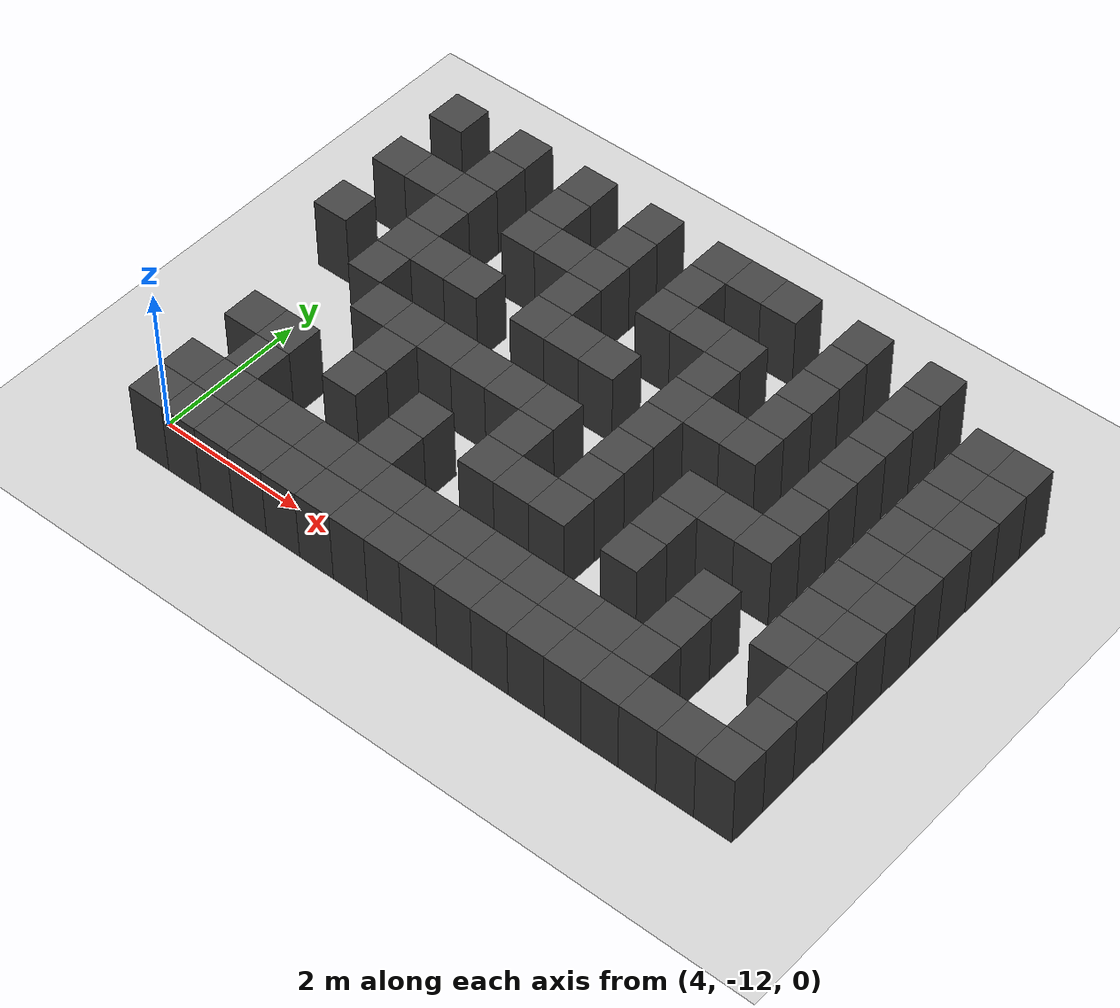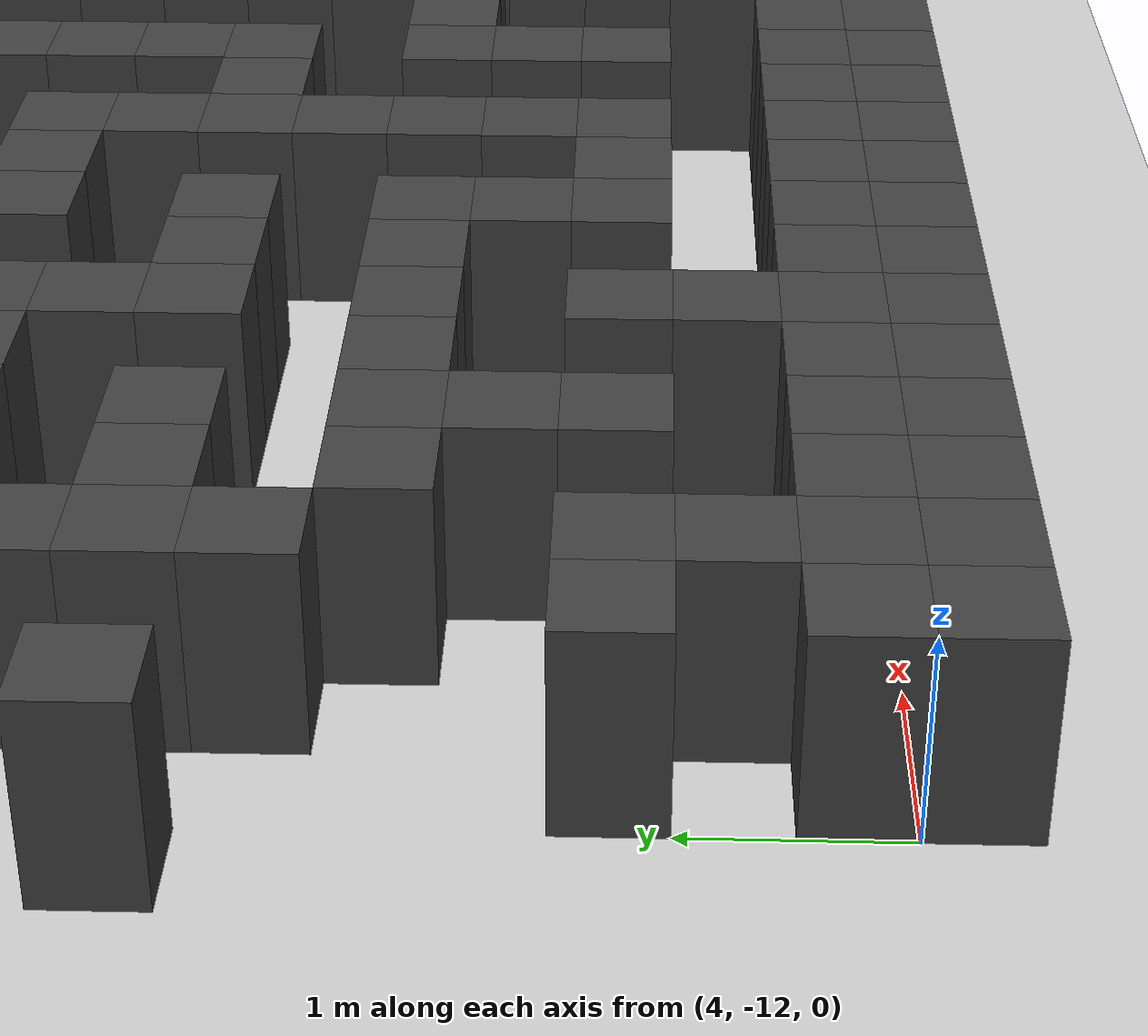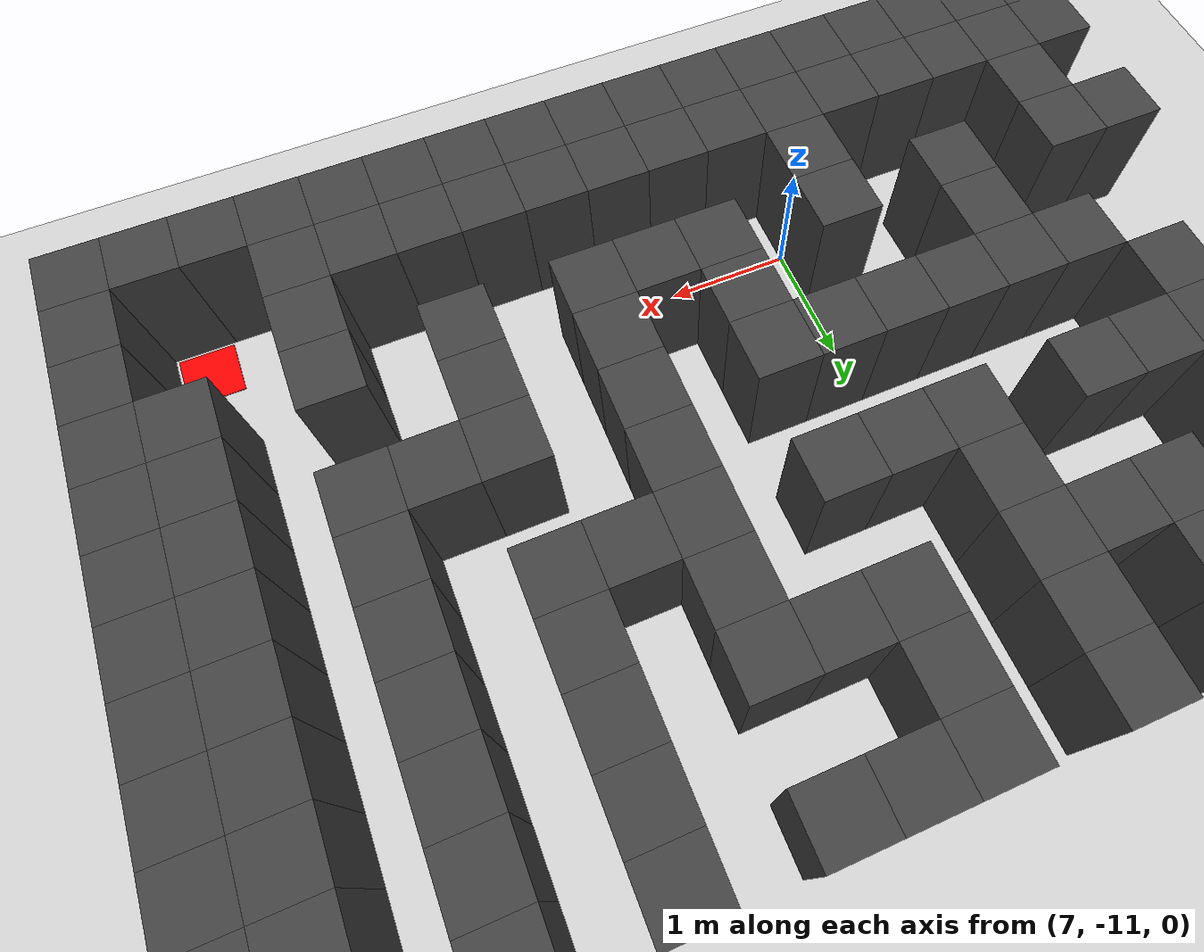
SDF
<sdf version="1.7">
 <world name="map_19815">
  <model name="ground_plane">
   <static>true</static>
   <link name="link">
    <collision name="collision">
     <geometry><plane><normal>0 0 1</normal><size>200 200</size></plane></geometry>
    </collision>
    <visual name="visual">
     <geometry><plane><normal>0 0 1</normal><size>200 200</size></plane></geometry>
     <material><ambient>0.8 0.8 0.8 1</ambient><diffuse>0.8 0.8 0.8 1</diffuse></material>
    </visual>
   </link>
  </model>
  <model name="maze_environment">
   <static>true</static>
   <link name="wall_1013">
    <pose>3.750 -6.750 0.500 0 0 0</pose>
    <collision name="col"><geometry><box><size>0.5 0.5 1.0</size></box></geometry></collision>
    <visual name="vis">
     <geometry><box><size>0.5 0.5 1.0</size></box></geometry>
     <material><ambient>0.15 0.15 0.15 1</ambient><diffuse>0.25 0.25 0.25 1</diffuse></material>
    </visual>
   </link>
   <link name="wall_1014">
    <pose>4.750 -6.750 0.500 0 0 0</pose>
    <collision name="col"><geometry><box><size>0.5 0.5 1.0</size></box></geometry></collision>
    <visual name="vis">
     <geometry><box><size>0.5 0.5 1.0</size></box></geometry>
     <material><ambient>0.15 0.15 0.15 1</ambient><diffuse>0.25 0.25 0.25 1</diffuse></material>
    </visual>
   </link>
   <link name="wall_1015">
    <pose>5.750 -6.750 0.500 0 0 0</pose>
    <collision name="col"><geometry><box><size>0.5 0.5 1.0</size></box></geometry></collision>
    <visual name="vis">
     <geometry><box><size>0.5 0.5 1.0</size></box></geometry>
     <material><ambient>0.15 0.15 0.15 1</ambient><diffuse>0.25 0.25 0.25 1</diffuse></material>
    </visual>
   </link>
   <link name="wall_1016">
    <pose>6.750 -6.750 0.500 0 0 0</pose>
    <collision name="col"><geometry><box><size>0.5 0.5 1.0</size></box></geometry></collision>
    <visual name="vis">
     <geometry><box><size>0.5 0.5 1.0</size></box></geometry>
     <material><ambient>0.15 0.15 0.15 1</ambient><diffuse>0.25 0.25 0.25 1</diffuse></material>
    </visual>
   </link>
   <link name="wall_1017">
    <pose>7.750 -6.750 0.500 0 0 0</pose>
    <collision name="col"><geometry><box><size>0.5 0.5 1.0</size></box></geometry></collision>
    <visual name="vis">
     <geometry><box><size>0.5 0.5 1.0</size></box></geometry>
     <material><ambient>0.15 0.15 0.15 1</ambient><diffuse>0.25 0.25 0.25 1</diffuse></material>
    </visual>
   </link>
   <link name="wall_1018">
    <pose>8.250 -6.750 0.500 0 0 0</pose>
    <collision name="col"><geometry><box><size>0.5 0.5 1.0</size></box></geometry></collision>
    <visual name="vis">
     <geometry><box><size>0.5 0.5 1.0</size></box></geometry>
     <material><ambient>0.15 0.15 0.15 1</ambient><diffuse>0.25 0.25 0.25 1</diffuse></material>
    </visual>
   </link>
   <link name="wall_1019">
    <pose>8.750 -6.750 0.500 0 0 0</pose>
    <collision name="col"><geometry><box><size>0.5 0.5 1.0</size></box></geometry></collision>
    <visual name="vis">
     <geometry><box><size>0.5 0.5 1.0</size></box></geometry>
     <material><ambient>0.15 0.15 0.15 1</ambient><diffuse>0.25 0.25 0.25 1</diffuse></material>
    </visual>
   </link>
   <link name="wall_1020">
    <pose>9.750 -6.750 0.500 0 0 0</pose>
    <collision name="col"><geometry><box><size>0.5 0.5 1.0</size></box></geometry></collision>
    <visual name="vis">
     <geometry><box><size>0.5 0.5 1.0</size></box></geometry>
     <material><ambient>0.15 0.15 0.15 1</ambient><diffuse>0.25 0.25 0.25 1</diffuse></material>
    </visual>
   </link>
   <link name="wall_1021">
    <pose>10.750 -6.750 0.500 0 0 0</pose>
    <collision name="col"><geometry><box><size>0.5 0.5 1.0</size></box></geometry></collision>
    <visual name="vis">
     <geometry><box><size>0.5 0.5 1.0</size></box></geometry>
     <material><ambient>0.15 0.15 0.15 1</ambient><diffuse>0.25 0.25 0.25 1</diffuse></material>
    </visual>
   </link>
   <link name="wall_1031">
    <pose>4.750 -7.250 0.500 0 0 0</pose>
    <collision name="col"><geometry><box><size>0.5 0.5 1.0</size></box></geometry></collision>
    <visual name="vis">
     <geometry><box><size>0.5 0.5 1.0</size></box></geometry>
     <material><ambient>0.15 0.15 0.15 1</ambient><diffuse>0.25 0.25 0.25 1</diffuse></material>
    </visual>
   </link>
   <link name="wall_1032">
    <pose>5.750 -7.250 0.500 0 0 0</pose>
    <collision name="col"><geometry><box><size>0.5 0.5 1.0</size></box></geometry></collision>
    <visual name="vis">
     <geometry><box><size>0.5 0.5 1.0</size></box></geometry>
     <material><ambient>0.15 0.15 0.15 1</ambient><diffuse>0.25 0.25 0.25 1</diffuse></material>
    </visual>
   </link>
   <link name="wall_1033">
    <pose>6.750 -7.250 0.500 0 0 0</pose>
    <collision name="col"><geometry><box><size>0.5 0.5 1.0</size></box></geometry></collision>
    <visual name="vis">
     <geometry><box><size>0.5 0.5 1.0</size></box></geometry>
     <material><ambient>0.15 0.15 0.15 1</ambient><diffuse>0.25 0.25 0.25 1</diffuse></material>
    </visual>
   </link>
   <link name="wall_1034">
    <pose>7.750 -7.250 0.500 0 0 0</pose>
    <collision name="col"><geometry><box><size>0.5 0.5 1.0</size></box></geometry></collision>
    <visual name="vis">
     <geometry><box><size>0.5 0.5 1.0</size></box></geometry>
     <material><ambient>0.15 0.15 0.15 1</ambient><diffuse>0.25 0.25 0.25 1</diffuse></material>
    </visual>
   </link>
   <link name="wall_1035">
    <pose>9.750 -7.250 0.500 0 0 0</pose>
    <collision name="col"><geometry><box><size>0.5 0.5 1.0</size></box></geometry></collision>
    <visual name="vis">
     <geometry><box><size>0.5 0.5 1.0</size></box></geometry>
     <material><ambient>0.15 0.15 0.15 1</ambient><diffuse>0.25 0.25 0.25 1</diffuse></material>
    </visual>
   </link>
   <link name="wall_1036">
    <pose>10.750 -7.250 0.500 0 0 0</pose>
    <collision name="col"><geometry><box><size>0.5 0.5 1.0</size></box></geometry></collision>
    <visual name="vis">
     <geometry><box><size>0.5 0.5 1.0</size></box></geometry>
     <material><ambient>0.15 0.15 0.15 1</ambient><diffuse>0.25 0.25 0.25 1</diffuse></material>
    </visual>
   </link>
   <link name="wall_1037">
    <pose>11.750 -7.250 0.500 0 0 0</pose>
    <collision name="col"><geometry><box><size>0.5 0.5 1.0</size></box></geometry></collision>
    <visual name="vis">
     <geometry><box><size>0.5 0.5 1.0</size></box></geometry>
     <material><ambient>0.15 0.15 0.15 1</ambient><diffuse>0.25 0.25 0.25 1</diffuse></material>
    </visual>
   </link>
   <link name="wall_1038">
    <pose>12.250 -7.250 0.500 0 0 0</pose>
    <collision name="col"><geometry><box><size>0.5 0.5 1.0</size></box></geometry></collision>
    <visual name="vis">
     <geometry><box><size>0.5 0.5 1.0</size></box></geometry>
     <material><ambient>0.15 0.15 0.15 1</ambient><diffuse>0.25 0.25 0.25 1</diffuse></material>
    </visual>
   </link>
   <link name="wall_1063">
    <pose>3.750 -7.750 0.500 0 0 0</pose>
    <collision name="col"><geometry><box><size>0.5 0.5 1.0</size></box></geometry></collision>
    <visual name="vis">
     <geometry><box><size>0.5 0.5 1.0</size></box></geometry>
     <material><ambient>0.15 0.15 0.15 1</ambient><diffuse>0.25 0.25 0.25 1</diffuse></material>
    </visual>
   </link>
   <link name="wall_1064">
    <pose>4.250 -7.750 0.500 0 0 0</pose>
    <collision name="col"><geometry><box><size>0.5 0.5 1.0</size></box></geometry></collision>
    <visual name="vis">
     <geometry><box><size>0.5 0.5 1.0</size></box></geometry>
     <material><ambient>0.15 0.15 0.15 1</ambient><diffuse>0.25 0.25 0.25 1</diffuse></material>
    </visual>
   </link>
   <link name="wall_1065">
    <pose>4.750 -7.750 0.500 0 0 0</pose>
    <collision name="col"><geometry><box><size>0.5 0.5 1.0</size></box></geometry></collision>
    <visual name="vis">
     <geometry><box><size>0.5 0.5 1.0</size></box></geometry>
     <material><ambient>0.15 0.15 0.15 1</ambient><diffuse>0.25 0.25 0.25 1</diffuse></material>
    </visual>
   </link>
   <link name="wall_1066">
    <pose>5.750 -7.750 0.500 0 0 0</pose>
    <collision name="col"><geometry><box><size>0.5 0.5 1.0</size></box></geometry></collision>
    <visual name="vis">
     <geometry><box><size>0.5 0.5 1.0</size></box></geometry>
     <material><ambient>0.15 0.15 0.15 1</ambient><diffuse>0.25 0.25 0.25 1</diffuse></material>
    </visual>
   </link>
   <link name="wall_1067">
    <pose>6.250 -7.750 0.500 0 0 0</pose>
    <collision name="col"><geometry><box><size>0.5 0.5 1.0</size></box></geometry></collision>
    <visual name="vis">
     <geometry><box><size>0.5 0.5 1.0</size></box></geometry>
     <material><ambient>0.15 0.15 0.15 1</ambient><diffuse>0.25 0.25 0.25 1</diffuse></material>
    </visual>
   </link>
   <link name="wall_1068">
    <pose>6.750 -7.750 0.500 0 0 0</pose>
    <collision name="col"><geometry><box><size>0.5 0.5 1.0</size></box></geometry></collision>
    <visual name="vis">
     <geometry><box><size>0.5 0.5 1.0</size></box></geometry>
     <material><ambient>0.15 0.15 0.15 1</ambient><diffuse>0.25 0.25 0.25 1</diffuse></material>
    </visual>
   </link>
   <link name="wall_1069">
    <pose>7.750 -7.750 0.500 0 0 0</pose>
    <collision name="col"><geometry><box><size>0.5 0.5 1.0</size></box></geometry></collision>
    <visual name="vis">
     <geometry><box><size>0.5 0.5 1.0</size></box></geometry>
     <material><ambient>0.15 0.15 0.15 1</ambient><diffuse>0.25 0.25 0.25 1</diffuse></material>
    </visual>
   </link>
   <link name="wall_1070">
    <pose>8.250 -7.750 0.500 0 0 0</pose>
    <collision name="col"><geometry><box><size>0.5 0.5 1.0</size></box></geometry></collision>
    <visual name="vis">
     <geometry><box><size>0.5 0.5 1.0</size></box></geometry>
     <material><ambient>0.15 0.15 0.15 1</ambient><diffuse>0.25 0.25 0.25 1</diffuse></material>
    </visual>
   </link>
   <link name="wall_1071">
    <pose>8.750 -7.750 0.500 0 0 0</pose>
    <collision name="col"><geometry><box><size>0.5 0.5 1.0</size></box></geometry></collision>
    <visual name="vis">
     <geometry><box><size>0.5 0.5 1.0</size></box></geometry>
     <material><ambient>0.15 0.15 0.15 1</ambient><diffuse>0.25 0.25 0.25 1</diffuse></material>
    </visual>
   </link>
   <link name="wall_1072">
    <pose>9.750 -7.750 0.500 0 0 0</pose>
    <collision name="col"><geometry><box><size>0.5 0.5 1.0</size></box></geometry></collision>
    <visual name="vis">
     <geometry><box><size>0.5 0.5 1.0</size></box></geometry>
     <material><ambient>0.15 0.15 0.15 1</ambient><diffuse>0.25 0.25 0.25 1</diffuse></material>
    </visual>
   </link>
   <link name="wall_1073">
    <pose>10.750 -7.750 0.500 0 0 0</pose>
    <collision name="col"><geometry><box><size>0.5 0.5 1.0</size></box></geometry></collision>
    <visual name="vis">
     <geometry><box><size>0.5 0.5 1.0</size></box></geometry>
     <material><ambient>0.15 0.15 0.15 1</ambient><diffuse>0.25 0.25 0.25 1</diffuse></material>
    </visual>
   </link>
   <link name="wall_1074">
    <pose>11.750 -7.750 0.500 0 0 0</pose>
    <collision name="col"><geometry><box><size>0.5 0.5 1.0</size></box></geometry></collision>
    <visual name="vis">
     <geometry><box><size>0.5 0.5 1.0</size></box></geometry>
     <material><ambient>0.15 0.15 0.15 1</ambient><diffuse>0.25 0.25 0.25 1</diffuse></material>
    </visual>
   </link>
   <link name="wall_1075">
    <pose>12.250 -7.750 0.500 0 0 0</pose>
    <collision name="col"><geometry><box><size>0.5 0.5 1.0</size></box></geometry></collision>
    <visual name="vis">
     <geometry><box><size>0.5 0.5 1.0</size></box></geometry>
     <material><ambient>0.15 0.15 0.15 1</ambient><diffuse>0.25 0.25 0.25 1</diffuse></material>
    </visual>
   </link>
   <link name="wall_1085">
    <pose>4.750 -8.250 0.500 0 0 0</pose>
    <collision name="col"><geometry><box><size>0.5 0.5 1.0</size></box></geometry></collision>
    <visual name="vis">
     <geometry><box><size>0.5 0.5 1.0</size></box></geometry>
     <material><ambient>0.15 0.15 0.15 1</ambient><diffuse>0.25 0.25 0.25 1</diffuse></material>
    </visual>
   </link>
   <link name="wall_1086">
    <pose>6.750 -8.250 0.500 0 0 0</pose>
    <collision name="col"><geometry><box><size>0.5 0.5 1.0</size></box></geometry></collision>
    <visual name="vis">
     <geometry><box><size>0.5 0.5 1.0</size></box></geometry>
     <material><ambient>0.15 0.15 0.15 1</ambient><diffuse>0.25 0.25 0.25 1</diffuse></material>
    </visual>
   </link>
   <link name="wall_1087">
    <pose>8.750 -8.250 0.500 0 0 0</pose>
    <collision name="col"><geometry><box><size>0.5 0.5 1.0</size></box></geometry></collision>
    <visual name="vis">
     <geometry><box><size>0.5 0.5 1.0</size></box></geometry>
     <material><ambient>0.15 0.15 0.15 1</ambient><diffuse>0.25 0.25 0.25 1</diffuse></material>
    </visual>
   </link>
   <link name="wall_1088">
    <pose>9.750 -8.250 0.500 0 0 0</pose>
    <collision name="col"><geometry><box><size>0.5 0.5 1.0</size></box></geometry></collision>
    <visual name="vis">
     <geometry><box><size>0.5 0.5 1.0</size></box></geometry>
     <material><ambient>0.15 0.15 0.15 1</ambient><diffuse>0.25 0.25 0.25 1</diffuse></material>
    </visual>
   </link>
   <link name="wall_1089">
    <pose>10.750 -8.250 0.500 0 0 0</pose>
    <collision name="col"><geometry><box><size>0.5 0.5 1.0</size></box></geometry></collision>
    <visual name="vis">
     <geometry><box><size>0.5 0.5 1.0</size></box></geometry>
     <material><ambient>0.15 0.15 0.15 1</ambient><diffuse>0.25 0.25 0.25 1</diffuse></material>
    </visual>
   </link>
   <link name="wall_1090">
    <pose>11.750 -8.250 0.500 0 0 0</pose>
    <collision name="col"><geometry><box><size>0.5 0.5 1.0</size></box></geometry></collision>
    <visual name="vis">
     <geometry><box><size>0.5 0.5 1.0</size></box></geometry>
     <material><ambient>0.15 0.15 0.15 1</ambient><diffuse>0.25 0.25 0.25 1</diffuse></material>
    </visual>
   </link>
   <link name="wall_1091">
    <pose>12.250 -8.250 0.500 0 0 0</pose>
    <collision name="col"><geometry><box><size>0.5 0.5 1.0</size></box></geometry></collision>
    <visual name="vis">
     <geometry><box><size>0.5 0.5 1.0</size></box></geometry>
     <material><ambient>0.15 0.15 0.15 1</ambient><diffuse>0.25 0.25 0.25 1</diffuse></material>
    </visual>
   </link>
   <link name="wall_1113">
    <pose>3.750 -8.750 0.500 0 0 0</pose>
    <collision name="col"><geometry><box><size>0.5 0.5 1.0</size></box></geometry></collision>
    <visual name="vis">
     <geometry><box><size>0.5 0.5 1.0</size></box></geometry>
     <material><ambient>0.15 0.15 0.15 1</ambient><diffuse>0.25 0.25 0.25 1</diffuse></material>
    </visual>
   </link>
   <link name="wall_1114">
    <pose>4.750 -8.750 0.500 0 0 0</pose>
    <collision name="col"><geometry><box><size>0.5 0.5 1.0</size></box></geometry></collision>
    <visual name="vis">
     <geometry><box><size>0.5 0.5 1.0</size></box></geometry>
     <material><ambient>0.15 0.15 0.15 1</ambient><diffuse>0.25 0.25 0.25 1</diffuse></material>
    </visual>
   </link>
   <link name="wall_1115">
    <pose>5.250 -8.750 0.500 0 0 0</pose>
    <collision name="col"><geometry><box><size>0.5 0.5 1.0</size></box></geometry></collision>
    <visual name="vis">
     <geometry><box><size>0.5 0.5 1.0</size></box></geometry>
     <material><ambient>0.15 0.15 0.15 1</ambient><diffuse>0.25 0.25 0.25 1</diffuse></material>
    </visual>
   </link>
   <link name="wall_1116">
    <pose>5.750 -8.750 0.500 0 0 0</pose>
    <collision name="col"><geometry><box><size>0.5 0.5 1.0</size></box></geometry></collision>
    <visual name="vis">
     <geometry><box><size>0.5 0.5 1.0</size></box></geometry>
     <material><ambient>0.15 0.15 0.15 1</ambient><diffuse>0.25 0.25 0.25 1</diffuse></material>
    </visual>
   </link>
   <link name="wall_1117">
    <pose>6.750 -8.750 0.500 0 0 0</pose>
    <collision name="col"><geometry><box><size>0.5 0.5 1.0</size></box></geometry></collision>
    <visual name="vis">
     <geometry><box><size>0.5 0.5 1.0</size></box></geometry>
     <material><ambient>0.15 0.15 0.15 1</ambient><diffuse>0.25 0.25 0.25 1</diffuse></material>
    </visual>
   </link>
   <link name="wall_1118">
    <pose>7.250 -8.750 0.500 0 0 0</pose>
    <collision name="col"><geometry><box><size>0.5 0.5 1.0</size></box></geometry></collision>
    <visual name="vis">
     <geometry><box><size>0.5 0.5 1.0</size></box></geometry>
     <material><ambient>0.15 0.15 0.15 1</ambient><diffuse>0.25 0.25 0.25 1</diffuse></material>
    </visual>
   </link>
   <link name="wall_1119">
    <pose>7.750 -8.750 0.500 0 0 0</pose>
    <collision name="col"><geometry><box><size>0.5 0.5 1.0</size></box></geometry></collision>
    <visual name="vis">
     <geometry><box><size>0.5 0.5 1.0</size></box></geometry>
     <material><ambient>0.15 0.15 0.15 1</ambient><diffuse>0.25 0.25 0.25 1</diffuse></material>
    </visual>
   </link>
   <link name="wall_1120">
    <pose>8.750 -8.750 0.500 0 0 0</pose>
    <collision name="col"><geometry><box><size>0.5 0.5 1.0</size></box></geometry></collision>
    <visual name="vis">
     <geometry><box><size>0.5 0.5 1.0</size></box></geometry>
     <material><ambient>0.15 0.15 0.15 1</ambient><diffuse>0.25 0.25 0.25 1</diffuse></material>
    </visual>
   </link>
   <link name="wall_1121">
    <pose>9.250 -8.750 0.500 0 0 0</pose>
    <collision name="col"><geometry><box><size>0.5 0.5 1.0</size></box></geometry></collision>
    <visual name="vis">
     <geometry><box><size>0.5 0.5 1.0</size></box></geometry>
     <material><ambient>0.15 0.15 0.15 1</ambient><diffuse>0.25 0.25 0.25 1</diffuse></material>
    </visual>
   </link>
   <link name="wall_1122">
    <pose>9.750 -8.750 0.500 0 0 0</pose>
    <collision name="col"><geometry><box><size>0.5 0.5 1.0</size></box></geometry></collision>
    <visual name="vis">
     <geometry><box><size>0.5 0.5 1.0</size></box></geometry>
     <material><ambient>0.15 0.15 0.15 1</ambient><diffuse>0.25 0.25 0.25 1</diffuse></material>
    </visual>
   </link>
   <link name="wall_1123">
    <pose>10.750 -8.750 0.500 0 0 0</pose>
    <collision name="col"><geometry><box><size>0.5 0.5 1.0</size></box></geometry></collision>
    <visual name="vis">
     <geometry><box><size>0.5 0.5 1.0</size></box></geometry>
     <material><ambient>0.15 0.15 0.15 1</ambient><diffuse>0.25 0.25 0.25 1</diffuse></material>
    </visual>
   </link>
   <link name="wall_1124">
    <pose>11.750 -8.750 0.500 0 0 0</pose>
    <collision name="col"><geometry><box><size>0.5 0.5 1.0</size></box></geometry></collision>
    <visual name="vis">
     <geometry><box><size>0.5 0.5 1.0</size></box></geometry>
     <material><ambient>0.15 0.15 0.15 1</ambient><diffuse>0.25 0.25 0.25 1</diffuse></material>
    </visual>
   </link>
   <link name="wall_1125">
    <pose>12.250 -8.750 0.500 0 0 0</pose>
    <collision name="col"><geometry><box><size>0.5 0.5 1.0</size></box></geometry></collision>
    <visual name="vis">
     <geometry><box><size>0.5 0.5 1.0</size></box></geometry>
     <material><ambient>0.15 0.15 0.15 1</ambient><diffuse>0.25 0.25 0.25 1</diffuse></material>
    </visual>
   </link>
   <link name="wall_1136">
    <pose>4.750 -9.250 0.500 0 0 0</pose>
    <collision name="col"><geometry><box><size>0.5 0.5 1.0</size></box></geometry></collision>
    <visual name="vis">
     <geometry><box><size>0.5 0.5 1.0</size></box></geometry>
     <material><ambient>0.15 0.15 0.15 1</ambient><diffuse>0.25 0.25 0.25 1</diffuse></material>
    </visual>
   </link>
   <link name="wall_1137">
    <pose>8.750 -9.250 0.500 0 0 0</pose>
    <collision name="col"><geometry><box><size>0.5 0.5 1.0</size></box></geometry></collision>
    <visual name="vis">
     <geometry><box><size>0.5 0.5 1.0</size></box></geometry>
     <material><ambient>0.15 0.15 0.15 1</ambient><diffuse>0.25 0.25 0.25 1</diffuse></material>
    </visual>
   </link>
   <link name="wall_1138">
    <pose>10.750 -9.250 0.500 0 0 0</pose>
    <collision name="col"><geometry><box><size>0.5 0.5 1.0</size></box></geometry></collision>
    <visual name="vis">
     <geometry><box><size>0.5 0.5 1.0</size></box></geometry>
     <material><ambient>0.15 0.15 0.15 1</ambient><diffuse>0.25 0.25 0.25 1</diffuse></material>
    </visual>
   </link>
   <link name="wall_1139">
    <pose>11.750 -9.250 0.500 0 0 0</pose>
    <collision name="col"><geometry><box><size>0.5 0.5 1.0</size></box></geometry></collision>
    <visual name="vis">
     <geometry><box><size>0.5 0.5 1.0</size></box></geometry>
     <material><ambient>0.15 0.15 0.15 1</ambient><diffuse>0.25 0.25 0.25 1</diffuse></material>
    </visual>
   </link>
   <link name="wall_1140">
    <pose>12.250 -9.250 0.500 0 0 0</pose>
    <collision name="col"><geometry><box><size>0.5 0.5 1.0</size></box></geometry></collision>
    <visual name="vis">
     <geometry><box><size>0.5 0.5 1.0</size></box></geometry>
     <material><ambient>0.15 0.15 0.15 1</ambient><diffuse>0.25 0.25 0.25 1</diffuse></material>
    </visual>
   </link>
   <link name="wall_1165">
    <pose>5.250 -9.750 0.500 0 0 0</pose>
    <collision name="col"><geometry><box><size>0.5 0.5 1.0</size></box></geometry></collision>
    <visual name="vis">
     <geometry><box><size>0.5 0.5 1.0</size></box></geometry>
     <material><ambient>0.15 0.15 0.15 1</ambient><diffuse>0.25 0.25 0.25 1</diffuse></material>
    </visual>
   </link>
   <link name="wall_1166">
    <pose>5.750 -9.750 0.500 0 0 0</pose>
    <collision name="col"><geometry><box><size>0.5 0.5 1.0</size></box></geometry></collision>
    <visual name="vis">
     <geometry><box><size>0.5 0.5 1.0</size></box></geometry>
     <material><ambient>0.15 0.15 0.15 1</ambient><diffuse>0.25 0.25 0.25 1</diffuse></material>
    </visual>
   </link>
   <link name="wall_1167">
    <pose>6.250 -9.750 0.500 0 0 0</pose>
    <collision name="col"><geometry><box><size>0.5 0.5 1.0</size></box></geometry></collision>
    <visual name="vis">
     <geometry><box><size>0.5 0.5 1.0</size></box></geometry>
     <material><ambient>0.15 0.15 0.15 1</ambient><diffuse>0.25 0.25 0.25 1</diffuse></material>
    </visual>
   </link>
   <link name="wall_1168">
    <pose>6.750 -9.750 0.500 0 0 0</pose>
    <collision name="col"><geometry><box><size>0.5 0.5 1.0</size></box></geometry></collision>
    <visual name="vis">
     <geometry><box><size>0.5 0.5 1.0</size></box></geometry>
     <material><ambient>0.15 0.15 0.15 1</ambient><diffuse>0.25 0.25 0.25 1</diffuse></material>
    </visual>
   </link>
   <link name="wall_1169">
    <pose>7.250 -9.750 0.500 0 0 0</pose>
    <collision name="col"><geometry><box><size>0.5 0.5 1.0</size></box></geometry></collision>
    <visual name="vis">
     <geometry><box><size>0.5 0.5 1.0</size></box></geometry>
     <material><ambient>0.15 0.15 0.15 1</ambient><diffuse>0.25 0.25 0.25 1</diffuse></material>
    </visual>
   </link>
   <link name="wall_1170">
    <pose>7.750 -9.750 0.500 0 0 0</pose>
    <collision name="col"><geometry><box><size>0.5 0.5 1.0</size></box></geometry></collision>
    <visual name="vis">
     <geometry><box><size>0.5 0.5 1.0</size></box></geometry>
     <material><ambient>0.15 0.15 0.15 1</ambient><diffuse>0.25 0.25 0.25 1</diffuse></material>
    </visual>
   </link>
   <link name="wall_1171">
    <pose>8.750 -9.750 0.500 0 0 0</pose>
    <collision name="col"><geometry><box><size>0.5 0.5 1.0</size></box></geometry></collision>
    <visual name="vis">
     <geometry><box><size>0.5 0.5 1.0</size></box></geometry>
     <material><ambient>0.15 0.15 0.15 1</ambient><diffuse>0.25 0.25 0.25 1</diffuse></material>
    </visual>
   </link>
   <link name="wall_1172">
    <pose>9.750 -9.750 0.500 0 0 0</pose>
    <collision name="col"><geometry><box><size>0.5 0.5 1.0</size></box></geometry></collision>
    <visual name="vis">
     <geometry><box><size>0.5 0.5 1.0</size></box></geometry>
     <material><ambient>0.15 0.15 0.15 1</ambient><diffuse>0.25 0.25 0.25 1</diffuse></material>
    </visual>
   </link>
   <link name="wall_1173">
    <pose>10.250 -9.750 0.500 0 0 0</pose>
    <collision name="col"><geometry><box><size>0.5 0.5 1.0</size></box></geometry></collision>
    <visual name="vis">
     <geometry><box><size>0.5 0.5 1.0</size></box></geometry>
     <material><ambient>0.15 0.15 0.15 1</ambient><diffuse>0.25 0.25 0.25 1</diffuse></material>
    </visual>
   </link>
   <link name="wall_1174">
    <pose>10.750 -9.750 0.500 0 0 0</pose>
    <collision name="col"><geometry><box><size>0.5 0.5 1.0</size></box></geometry></collision>
    <visual name="vis">
     <geometry><box><size>0.5 0.5 1.0</size></box></geometry>
     <material><ambient>0.15 0.15 0.15 1</ambient><diffuse>0.25 0.25 0.25 1</diffuse></material>
    </visual>
   </link>
   <link name="wall_1175">
    <pose>11.750 -9.750 0.500 0 0 0</pose>
    <collision name="col"><geometry><box><size>0.5 0.5 1.0</size></box></geometry></collision>
    <visual name="vis">
     <geometry><box><size>0.5 0.5 1.0</size></box></geometry>
     <material><ambient>0.15 0.15 0.15 1</ambient><diffuse>0.25 0.25 0.25 1</diffuse></material>
    </visual>
   </link>
   <link name="wall_1176">
    <pose>12.250 -9.750 0.500 0 0 0</pose>
    <collision name="col"><geometry><box><size>0.5 0.5 1.0</size></box></geometry></collision>
    <visual name="vis">
     <geometry><box><size>0.5 0.5 1.0</size></box></geometry>
     <material><ambient>0.15 0.15 0.15 1</ambient><diffuse>0.25 0.25 0.25 1</diffuse></material>
    </visual>
   </link>
   <link name="wall_1188">
    <pose>5.750 -10.250 0.500 0 0 0</pose>
    <collision name="col"><geometry><box><size>0.5 0.5 1.0</size></box></geometry></collision>
    <visual name="vis">
     <geometry><box><size>0.5 0.5 1.0</size></box></geometry>
     <material><ambient>0.15 0.15 0.15 1</ambient><diffuse>0.25 0.25 0.25 1</diffuse></material>
    </visual>
   </link>
   <link name="wall_1189">
    <pose>7.750 -10.250 0.500 0 0 0</pose>
    <collision name="col"><geometry><box><size>0.5 0.5 1.0</size></box></geometry></collision>
    <visual name="vis">
     <geometry><box><size>0.5 0.5 1.0</size></box></geometry>
     <material><ambient>0.15 0.15 0.15 1</ambient><diffuse>0.25 0.25 0.25 1</diffuse></material>
    </visual>
   </link>
   <link name="wall_1190">
    <pose>8.750 -10.250 0.500 0 0 0</pose>
    <collision name="col"><geometry><box><size>0.5 0.5 1.0</size></box></geometry></collision>
    <visual name="vis">
     <geometry><box><size>0.5 0.5 1.0</size></box></geometry>
     <material><ambient>0.15 0.15 0.15 1</ambient><diffuse>0.25 0.25 0.25 1</diffuse></material>
    </visual>
   </link>
   <link name="wall_1191">
    <pose>9.750 -10.250 0.500 0 0 0</pose>
    <collision name="col"><geometry><box><size>0.5 0.5 1.0</size></box></geometry></collision>
    <visual name="vis">
     <geometry><box><size>0.5 0.5 1.0</size></box></geometry>
     <material><ambient>0.15 0.15 0.15 1</ambient><diffuse>0.25 0.25 0.25 1</diffuse></material>
    </visual>
   </link>
   <link name="wall_1192">
    <pose>11.750 -10.250 0.500 0 0 0</pose>
    <collision name="col"><geometry><box><size>0.5 0.5 1.0</size></box></geometry></collision>
    <visual name="vis">
     <geometry><box><size>0.5 0.5 1.0</size></box></geometry>
     <material><ambient>0.15 0.15 0.15 1</ambient><diffuse>0.25 0.25 0.25 1</diffuse></material>
    </visual>
   </link>
   <link name="wall_1193">
    <pose>12.250 -10.250 0.500 0 0 0</pose>
    <collision name="col"><geometry><box><size>0.5 0.5 1.0</size></box></geometry></collision>
    <visual name="vis">
     <geometry><box><size>0.5 0.5 1.0</size></box></geometry>
     <material><ambient>0.15 0.15 0.15 1</ambient><diffuse>0.25 0.25 0.25 1</diffuse></material>
    </visual>
   </link>
   <link name="wall_1219">
    <pose>4.250 -10.750 0.500 0 0 0</pose>
    <collision name="col"><geometry><box><size>0.5 0.5 1.0</size></box></geometry></collision>
    <visual name="vis">
     <geometry><box><size>0.5 0.5 1.0</size></box></geometry>
     <material><ambient>0.15 0.15 0.15 1</ambient><diffuse>0.25 0.25 0.25 1</diffuse></material>
    </visual>
   </link>
   <link name="wall_1220">
    <pose>4.750 -10.750 0.500 0 0 0</pose>
    <collision name="col"><geometry><box><size>0.5 0.5 1.0</size></box></geometry></collision>
    <visual name="vis">
     <geometry><box><size>0.5 0.5 1.0</size></box></geometry>
     <material><ambient>0.15 0.15 0.15 1</ambient><diffuse>0.25 0.25 0.25 1</diffuse></material>
    </visual>
   </link>
   <link name="wall_1221">
    <pose>5.750 -10.750 0.500 0 0 0</pose>
    <collision name="col"><geometry><box><size>0.5 0.5 1.0</size></box></geometry></collision>
    <visual name="vis">
     <geometry><box><size>0.5 0.5 1.0</size></box></geometry>
     <material><ambient>0.15 0.15 0.15 1</ambient><diffuse>0.25 0.25 0.25 1</diffuse></material>
    </visual>
   </link>
   <link name="wall_1222">
    <pose>6.750 -10.750 0.500 0 0 0</pose>
    <collision name="col"><geometry><box><size>0.5 0.5 1.0</size></box></geometry></collision>
    <visual name="vis">
     <geometry><box><size>0.5 0.5 1.0</size></box></geometry>
     <material><ambient>0.15 0.15 0.15 1</ambient><diffuse>0.25 0.25 0.25 1</diffuse></material>
    </visual>
   </link>
   <link name="wall_1223">
    <pose>7.750 -10.750 0.500 0 0 0</pose>
    <collision name="col"><geometry><box><size>0.5 0.5 1.0</size></box></geometry></collision>
    <visual name="vis">
     <geometry><box><size>0.5 0.5 1.0</size></box></geometry>
     <material><ambient>0.15 0.15 0.15 1</ambient><diffuse>0.25 0.25 0.25 1</diffuse></material>
    </visual>
   </link>
   <link name="wall_1224">
    <pose>8.250 -10.750 0.500 0 0 0</pose>
    <collision name="col"><geometry><box><size>0.5 0.5 1.0</size></box></geometry></collision>
    <visual name="vis">
     <geometry><box><size>0.5 0.5 1.0</size></box></geometry>
     <material><ambient>0.15 0.15 0.15 1</ambient><diffuse>0.25 0.25 0.25 1</diffuse></material>
    </visual>
   </link>
   <link name="wall_1225">
    <pose>8.750 -10.750 0.500 0 0 0</pose>
    <collision name="col"><geometry><box><size>0.5 0.5 1.0</size></box></geometry></collision>
    <visual name="vis">
     <geometry><box><size>0.5 0.5 1.0</size></box></geometry>
     <material><ambient>0.15 0.15 0.15 1</ambient><diffuse>0.25 0.25 0.25 1</diffuse></material>
    </visual>
   </link>
   <link name="wall_1226">
    <pose>9.750 -10.750 0.500 0 0 0</pose>
    <collision name="col"><geometry><box><size>0.5 0.5 1.0</size></box></geometry></collision>
    <visual name="vis">
     <geometry><box><size>0.5 0.5 1.0</size></box></geometry>
     <material><ambient>0.15 0.15 0.15 1</ambient><diffuse>0.25 0.25 0.25 1</diffuse></material>
    </visual>
   </link>
   <link name="wall_1227">
    <pose>10.750 -10.750 0.500 0 0 0</pose>
    <collision name="col"><geometry><box><size>0.5 0.5 1.0</size></box></geometry></collision>
    <visual name="vis">
     <geometry><box><size>0.5 0.5 1.0</size></box></geometry>
     <material><ambient>0.15 0.15 0.15 1</ambient><diffuse>0.25 0.25 0.25 1</diffuse></material>
    </visual>
   </link>
   <link name="wall_1228">
    <pose>11.750 -10.750 0.500 0 0 0</pose>
    <collision name="col"><geometry><box><size>0.5 0.5 1.0</size></box></geometry></collision>
    <visual name="vis">
     <geometry><box><size>0.5 0.5 1.0</size></box></geometry>
     <material><ambient>0.15 0.15 0.15 1</ambient><diffuse>0.25 0.25 0.25 1</diffuse></material>
    </visual>
   </link>
   <link name="wall_1229">
    <pose>12.250 -10.750 0.500 0 0 0</pose>
    <collision name="col"><geometry><box><size>0.5 0.5 1.0</size></box></geometry></collision>
    <visual name="vis">
     <geometry><box><size>0.5 0.5 1.0</size></box></geometry>
     <material><ambient>0.15 0.15 0.15 1</ambient><diffuse>0.25 0.25 0.25 1</diffuse></material>
    </visual>
   </link>
   <link name="wall_1234">
    <pose>4.750 -11.250 0.500 0 0 0</pose>
    <collision name="col"><geometry><box><size>0.5 0.5 1.0</size></box></geometry></collision>
    <visual name="vis">
     <geometry><box><size>0.5 0.5 1.0</size></box></geometry>
     <material><ambient>0.15 0.15 0.15 1</ambient><diffuse>0.25 0.25 0.25 1</diffuse></material>
    </visual>
   </link>
   <link name="wall_1235">
    <pose>6.750 -11.250 0.500 0 0 0</pose>
    <collision name="col"><geometry><box><size>0.5 0.5 1.0</size></box></geometry></collision>
    <visual name="vis">
     <geometry><box><size>0.5 0.5 1.0</size></box></geometry>
     <material><ambient>0.15 0.15 0.15 1</ambient><diffuse>0.25 0.25 0.25 1</diffuse></material>
    </visual>
   </link>
   <link name="wall_1236">
    <pose>10.750 -11.250 0.500 0 0 0</pose>
    <collision name="col"><geometry><box><size>0.5 0.5 1.0</size></box></geometry></collision>
    <visual name="vis">
     <geometry><box><size>0.5 0.5 1.0</size></box></geometry>
     <material><ambient>0.15 0.15 0.15 1</ambient><diffuse>0.25 0.25 0.25 1</diffuse></material>
    </visual>
   </link>
   <link name="wall_1237">
    <pose>12.250 -11.250 0.500 0 0 0</pose>
    <collision name="col"><geometry><box><size>0.5 0.5 1.0</size></box></geometry></collision>
    <visual name="vis">
     <geometry><box><size>0.5 0.5 1.0</size></box></geometry>
     <material><ambient>0.15 0.15 0.15 1</ambient><diffuse>0.25 0.25 0.25 1</diffuse></material>
    </visual>
   </link>
   <link name="wall_1271">
    <pose>4.250 -11.750 0.500 0 0 0</pose>
    <collision name="col"><geometry><box><size>0.5 0.5 1.0</size></box></geometry></collision>
    <visual name="vis">
     <geometry><box><size>0.5 0.5 1.0</size></box></geometry>
     <material><ambient>0.15 0.15 0.15 1</ambient><diffuse>0.25 0.25 0.25 1</diffuse></material>
    </visual>
   </link>
   <link name="wall_1272">
    <pose>4.750 -11.750 0.500 0 0 0</pose>
    <collision name="col"><geometry><box><size>0.5 0.5 1.0</size></box></geometry></collision>
    <visual name="vis">
     <geometry><box><size>0.5 0.5 1.0</size></box></geometry>
     <material><ambient>0.15 0.15 0.15 1</ambient><diffuse>0.25 0.25 0.25 1</diffuse></material>
    </visual>
   </link>
   <link name="wall_1273">
    <pose>5.250 -11.750 0.500 0 0 0</pose>
    <collision name="col"><geometry><box><size>0.5 0.5 1.0</size></box></geometry></collision>
    <visual name="vis">
     <geometry><box><size>0.5 0.5 1.0</size></box></geometry>
     <material><ambient>0.15 0.15 0.15 1</ambient><diffuse>0.25 0.25 0.25 1</diffuse></material>
    </visual>
   </link>
   <link name="wall_1274">
    <pose>5.750 -11.750 0.500 0 0 0</pose>
    <collision name="col"><geometry><box><size>0.5 0.5 1.0</size></box></geometry></collision>
    <visual name="vis">
     <geometry><box><size>0.5 0.5 1.0</size></box></geometry>
     <material><ambient>0.15 0.15 0.15 1</ambient><diffuse>0.25 0.25 0.25 1</diffuse></material>
    </visual>
   </link>
   <link name="wall_1275">
    <pose>6.250 -11.750 0.500 0 0 0</pose>
    <collision name="col"><geometry><box><size>0.5 0.5 1.0</size></box></geometry></collision>
    <visual name="vis">
     <geometry><box><size>0.5 0.5 1.0</size></box></geometry>
     <material><ambient>0.15 0.15 0.15 1</ambient><diffuse>0.25 0.25 0.25 1</diffuse></material>
    </visual>
   </link>
   <link name="wall_1276">
    <pose>6.750 -11.750 0.500 0 0 0</pose>
    <collision name="col"><geometry><box><size>0.5 0.5 1.0</size></box></geometry></collision>
    <visual name="vis">
     <geometry><box><size>0.5 0.5 1.0</size></box></geometry>
     <material><ambient>0.15 0.15 0.15 1</ambient><diffuse>0.25 0.25 0.25 1</diffuse></material>
    </visual>
   </link>
   <link name="wall_1277">
    <pose>7.250 -11.750 0.500 0 0 0</pose>
    <collision name="col"><geometry><box><size>0.5 0.5 1.0</size></box></geometry></collision>
    <visual name="vis">
     <geometry><box><size>0.5 0.5 1.0</size></box></geometry>
     <material><ambient>0.15 0.15 0.15 1</ambient><diffuse>0.25 0.25 0.25 1</diffuse></material>
    </visual>
   </link>
   <link name="wall_1278">
    <pose>7.750 -11.750 0.500 0 0 0</pose>
    <collision name="col"><geometry><box><size>0.5 0.5 1.0</size></box></geometry></collision>
    <visual name="vis">
     <geometry><box><size>0.5 0.5 1.0</size></box></geometry>
     <material><ambient>0.15 0.15 0.15 1</ambient><diffuse>0.25 0.25 0.25 1</diffuse></material>
    </visual>
   </link>
   <link name="wall_1279">
    <pose>8.250 -11.750 0.500 0 0 0</pose>
    <collision name="col"><geometry><box><size>0.5 0.5 1.0</size></box></geometry></collision>
    <visual name="vis">
     <geometry><box><size>0.5 0.5 1.0</size></box></geometry>
     <material><ambient>0.15 0.15 0.15 1</ambient><diffuse>0.25 0.25 0.25 1</diffuse></material>
    </visual>
   </link>
   <link name="wall_1280">
    <pose>8.750 -11.750 0.500 0 0 0</pose>
    <collision name="col"><geometry><box><size>0.5 0.5 1.0</size></box></geometry></collision>
    <visual name="vis">
     <geometry><box><size>0.5 0.5 1.0</size></box></geometry>
     <material><ambient>0.15 0.15 0.15 1</ambient><diffuse>0.25 0.25 0.25 1</diffuse></material>
    </visual>
   </link>
   <link name="wall_1281">
    <pose>9.250 -11.750 0.500 0 0 0</pose>
    <collision name="col"><geometry><box><size>0.5 0.5 1.0</size></box></geometry></collision>
    <visual name="vis">
     <geometry><box><size>0.5 0.5 1.0</size></box></geometry>
     <material><ambient>0.15 0.15 0.15 1</ambient><diffuse>0.25 0.25 0.25 1</diffuse></material>
    </visual>
   </link>
   <link name="wall_1282">
    <pose>9.750 -11.750 0.500 0 0 0</pose>
    <collision name="col"><geometry><box><size>0.5 0.5 1.0</size></box></geometry></collision>
    <visual name="vis">
     <geometry><box><size>0.5 0.5 1.0</size></box></geometry>
     <material><ambient>0.15 0.15 0.15 1</ambient><diffuse>0.25 0.25 0.25 1</diffuse></material>
    </visual>
   </link>
   <link name="wall_1283">
    <pose>10.250 -11.750 0.500 0 0 0</pose>
    <collision name="col"><geometry><box><size>0.5 0.5 1.0</size></box></geometry></collision>
    <visual name="vis">
     <geometry><box><size>0.5 0.5 1.0</size></box></geometry>
     <material><ambient>0.15 0.15 0.15 1</ambient><diffuse>0.25 0.25 0.25 1</diffuse></material>
    </visual>
   </link>
   <link name="wall_1284">
    <pose>10.750 -11.750 0.500 0 0 0</pose>
    <collision name="col"><geometry><box><size>0.5 0.5 1.0</size></box></geometry></collision>
    <visual name="vis">
     <geometry><box><size>0.5 0.5 1.0</size></box></geometry>
     <material><ambient>0.15 0.15 0.15 1</ambient><diffuse>0.25 0.25 0.25 1</diffuse></material>
    </visual>
   </link>
   <link name="wall_1285">
    <pose>12.250 -11.750 0.500 0 0 0</pose>
    <collision name="col"><geometry><box><size>0.5 0.5 1.0</size></box></geometry></collision>
    <visual name="vis">
     <geometry><box><size>0.5 0.5 1.0</size></box></geometry>
     <material><ambient>0.15 0.15 0.15 1</ambient><diffuse>0.25 0.25 0.25 1</diffuse></material>
    </visual>
   </link>
   <link name="wall_1319">
    <pose>4.250 -12.250 0.500 0 0 0</pose>
    <collision name="col"><geometry><box><size>0.5 0.5 1.0</size></box></geometry></collision>
    <visual name="vis">
     <geometry><box><size>0.5 0.5 1.0</size></box></geometry>
     <material><ambient>0.15 0.15 0.15 1</ambient><diffuse>0.25 0.25 0.25 1</diffuse></material>
    </visual>
   </link>
   <link name="wall_1320">
    <pose>4.750 -12.250 0.500 0 0 0</pose>
    <collision name="col"><geometry><box><size>0.5 0.5 1.0</size></box></geometry></collision>
    <visual name="vis">
     <geometry><box><size>0.5 0.5 1.0</size></box></geometry>
     <material><ambient>0.15 0.15 0.15 1</ambient><diffuse>0.25 0.25 0.25 1</diffuse></material>
    </visual>
   </link>
   <link name="wall_1321">
    <pose>5.250 -12.250 0.500 0 0 0</pose>
    <collision name="col"><geometry><box><size>0.5 0.5 1.0</size></box></geometry></collision>
    <visual name="vis">
     <geometry><box><size>0.5 0.5 1.0</size></box></geometry>
     <material><ambient>0.15 0.15 0.15 1</ambient><diffuse>0.25 0.25 0.25 1</diffuse></material>
    </visual>
   </link>
   <link name="wall_1322">
    <pose>5.750 -12.250 0.500 0 0 0</pose>
    <collision name="col"><geometry><box><size>0.5 0.5 1.0</size></box></geometry></collision>
    <visual name="vis">
     <geometry><box><size>0.5 0.5 1.0</size></box></geometry>
     <material><ambient>0.15 0.15 0.15 1</ambient><diffuse>0.25 0.25 0.25 1</diffuse></material>
    </visual>
   </link>
   <link name="wall_1323">
    <pose>6.250 -12.250 0.500 0 0 0</pose>
    <collision name="col"><geometry><box><size>0.5 0.5 1.0</size></box></geometry></collision>
    <visual name="vis">
     <geometry><box><size>0.5 0.5 1.0</size></box></geometry>
     <material><ambient>0.15 0.15 0.15 1</ambient><diffuse>0.25 0.25 0.25 1</diffuse></material>
    </visual>
   </link>
   <link name="wall_1324">
    <pose>6.750 -12.250 0.500 0 0 0</pose>
    <collision name="col"><geometry><box><size>0.5 0.5 1.0</size></box></geometry></collision>
    <visual name="vis">
     <geometry><box><size>0.5 0.5 1.0</size></box></geometry>
     <material><ambient>0.15 0.15 0.15 1</ambient><diffuse>0.25 0.25 0.25 1</diffuse></material>
    </visual>
   </link>
   <link name="wall_1325">
    <pose>7.250 -12.250 0.500 0 0 0</pose>
    <collision name="col"><geometry><box><size>0.5 0.5 1.0</size></box></geometry></collision>
    <visual name="vis">
     <geometry><box><size>0.5 0.5 1.0</size></box></geometry>
     <material><ambient>0.15 0.15 0.15 1</ambient><diffuse>0.25 0.25 0.25 1</diffuse></material>
    </visual>
   </link>
   <link name="wall_1326">
    <pose>7.750 -12.250 0.500 0 0 0</pose>
    <collision name="col"><geometry><box><size>0.5 0.5 1.0</size></box></geometry></collision>
    <visual name="vis">
     <geometry><box><size>0.5 0.5 1.0</size></box></geometry>
     <material><ambient>0.15 0.15 0.15 1</ambient><diffuse>0.25 0.25 0.25 1</diffuse></material>
    </visual>
   </link>
   <link name="wall_1327">
    <pose>8.250 -12.250 0.500 0 0 0</pose>
    <collision name="col"><geometry><box><size>0.5 0.5 1.0</size></box></geometry></collision>
    <visual name="vis">
     <geometry><box><size>0.5 0.5 1.0</size></box></geometry>
     <material><ambient>0.15 0.15 0.15 1</ambient><diffuse>0.25 0.25 0.25 1</diffuse></material>
    </visual>
   </link>
   <link name="wall_1328">
    <pose>8.750 -12.250 0.500 0 0 0</pose>
    <collision name="col"><geometry><box><size>0.5 0.5 1.0</size></box></geometry></collision>
    <visual name="vis">
     <geometry><box><size>0.5 0.5 1.0</size></box></geometry>
     <material><ambient>0.15 0.15 0.15 1</ambient><diffuse>0.25 0.25 0.25 1</diffuse></material>
    </visual>
   </link>
   <link name="wall_1329">
    <pose>9.250 -12.250 0.500 0 0 0</pose>
    <collision name="col"><geometry><box><size>0.5 0.5 1.0</size></box></geometry></collision>
    <visual name="vis">
     <geometry><box><size>0.5 0.5 1.0</size></box></geometry>
     <material><ambient>0.15 0.15 0.15 1</ambient><diffuse>0.25 0.25 0.25 1</diffuse></material>
    </visual>
   </link>
   <link name="wall_1330">
    <pose>9.750 -12.250 0.500 0 0 0</pose>
    <collision name="col"><geometry><box><size>0.5 0.5 1.0</size></box></geometry></collision>
    <visual name="vis">
     <geometry><box><size>0.5 0.5 1.0</size></box></geometry>
     <material><ambient>0.15 0.15 0.15 1</ambient><diffuse>0.25 0.25 0.25 1</diffuse></material>
    </visual>
   </link>
   <link name="wall_1331">
    <pose>10.250 -12.250 0.500 0 0 0</pose>
    <collision name="col"><geometry><box><size>0.5 0.5 1.0</size></box></geometry></collision>
    <visual name="vis">
     <geometry><box><size>0.5 0.5 1.0</size></box></geometry>
     <material><ambient>0.15 0.15 0.15 1</ambient><diffuse>0.25 0.25 0.25 1</diffuse></material>
    </visual>
   </link>
   <link name="wall_1332">
    <pose>10.750 -12.250 0.500 0 0 0</pose>
    <collision name="col"><geometry><box><size>0.5 0.5 1.0</size></box></geometry></collision>
    <visual name="vis">
     <geometry><box><size>0.5 0.5 1.0</size></box></geometry>
     <material><ambient>0.15 0.15 0.15 1</ambient><diffuse>0.25 0.25 0.25 1</diffuse></material>
    </visual>
   </link>
   <link name="wall_1333">
    <pose>11.250 -12.250 0.500 0 0 0</pose>
    <collision name="col"><geometry><box><size>0.5 0.5 1.0</size></box></geometry></collision>
    <visual name="vis">
     <geometry><box><size>0.5 0.5 1.0</size></box></geometry>
     <material><ambient>0.15 0.15 0.15 1</ambient><diffuse>0.25 0.25 0.25 1</diffuse></material>
    </visual>
   </link>
   <link name="wall_1334">
    <pose>11.750 -12.250 0.500 0 0 0</pose>
    <collision name="col"><geometry><box><size>0.5 0.5 1.0</size></box></geometry></collision>
    <visual name="vis">
     <geometry><box><size>0.5 0.5 1.0</size></box></geometry>
     <material><ambient>0.15 0.15 0.15 1</ambient><diffuse>0.25 0.25 0.25 1</diffuse></material>
    </visual>
   </link>
   <link name="wall_1335">
    <pose>12.250 -12.250 0.500 0 0 0</pose>
    <collision name="col"><geometry><box><size>0.5 0.5 1.0</size></box></geometry></collision>
    <visual name="vis">
     <geometry><box><size>0.5 0.5 1.0</size></box></geometry>
     <material><ambient>0.15 0.15 0.15 1</ambient><diffuse>0.25 0.25 0.25 1</diffuse></material>
    </visual>
   </link>
   <link name="goal_zone">
    <pose>11.750 -11.750 0.005 0 0 0</pose>
    <visual name="vis">
     <geometry><box><size>0.45 0.45 0.01</size></box></geometry>
     <material>
      <ambient>1.0 0.0 0.0 1</ambient>
      <diffuse>1.0 0.0 0.0 1</diffuse>
      <emissive>0.60 0.00 0.00 1</emissive>
     </material>
    </visual>
   </link>
  </model>
 </world>
</sdf>
